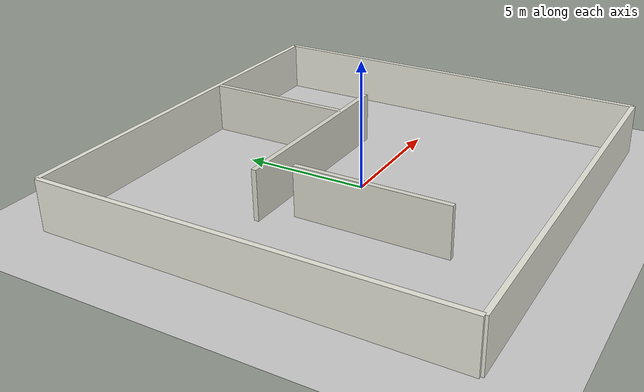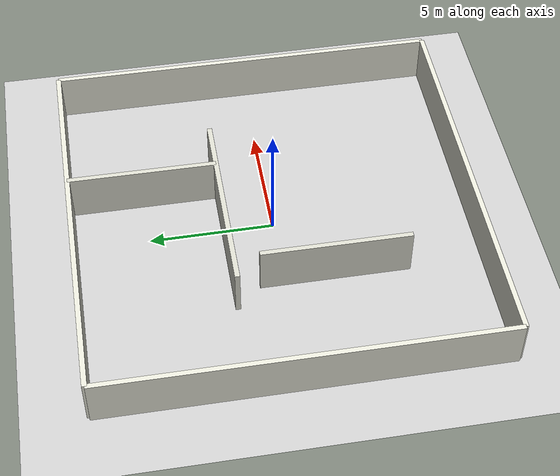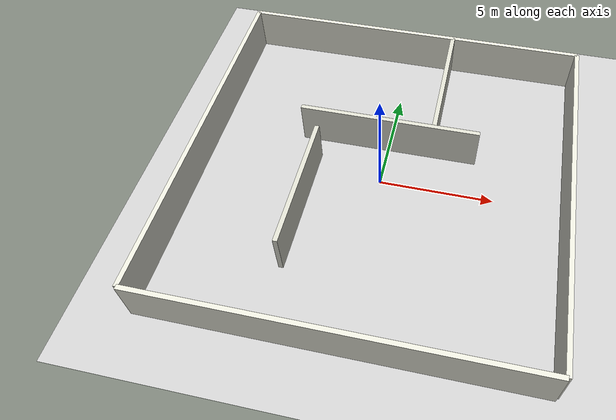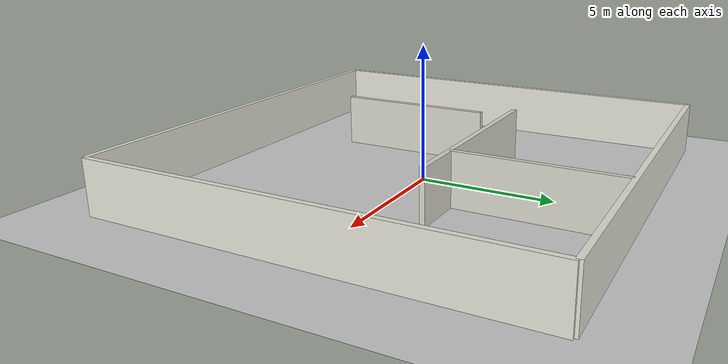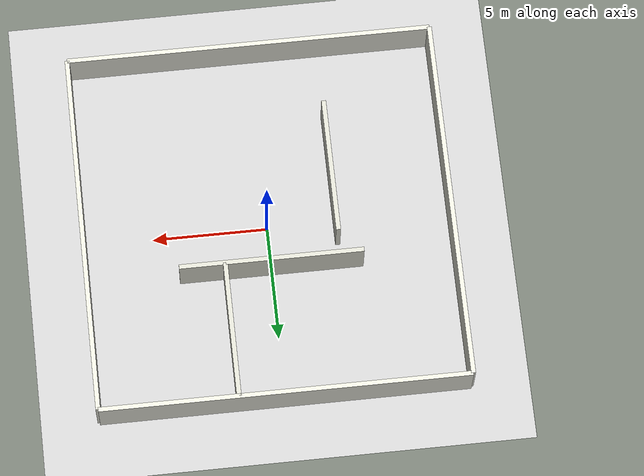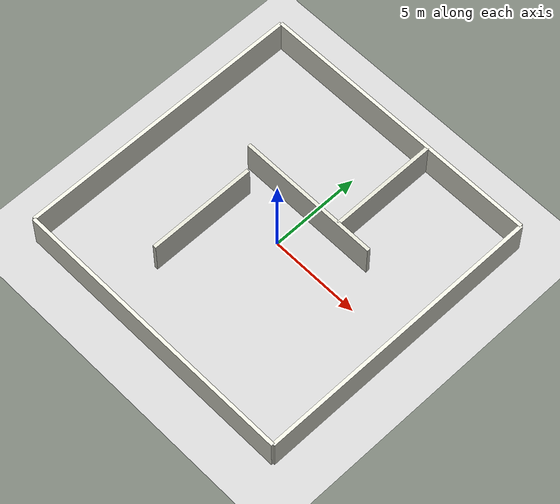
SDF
<?xml version="1.0" ?>
<sdf version="1.8">
  <world name="house">

    <!-- Lumière -->
    <light type="directional" name="sun">
      <cast_shadows>true</cast_shadows>
      <pose>0 0 10 0 0 0</pose>
      <diffuse>0.8 0.8 0.8 1</diffuse>
      <specular>0.2 0.2 0.2 1</specular>
      <direction>-0.5 0.1 -0.9</direction>
    </light>

    <!-- Sol -->
    <model name="ground_plane">
      <static>true</static>
      <link name="link">
        <collision name="collision">
          <geometry><plane><normal>0 0 1</normal></plane></geometry>
        </collision>
        <visual name="visual">
          <geometry><plane><normal>0 0 1</normal><size>50 50</size></plane></geometry>
          <material><ambient>0.8 0.8 0.8 1</ambient></material>
        </visual>
      </link>
    </model>

    <!-- Mur extérieur Nord -->
    <model name="wall_north">
      <static>true</static>
      <pose>0 8 1 0 0 0</pose>
      <link name="link">
        <collision name="collision">
          <geometry><box><size>16 0.2 2</size></box></geometry>
        </collision>
        <visual name="visual">
          <geometry><box><size>16 0.2 2</size></box></geometry>
          <material><ambient>0.9 0.9 0.85 1</ambient></material>
        </visual>
      </link>
    </model>

    <!-- Mur extérieur Sud -->
    <model name="wall_south">
      <static>true</static>
      <pose>0 -8 1 0 0 0</pose>
      <link name="link">
        <collision name="collision">
          <geometry><box><size>16 0.2 2</size></box></geometry>
        </collision>
        <visual name="visual">
          <geometry><box><size>16 0.2 2</size></box></geometry>
          <material><ambient>0.9 0.9 0.85 1</ambient></material>
        </visual>
      </link>
    </model>

    <!-- Mur extérieur Est -->
    <model name="wall_east">
      <static>true</static>
      <pose>8 0 1 0 0 0</pose>
      <link name="link">
        <collision name="collision">
          <geometry><box><size>0.2 16 2</size></box></geometry>
        </collision>
        <visual name="visual">
          <geometry><box><size>0.2 16 2</size></box></geometry>
          <material><ambient>0.9 0.9 0.85 1</ambient></material>
        </visual>
      </link>
    </model>

    <!-- Mur extérieur Ouest -->
    <model name="wall_west">
      <static>true</static>
      <pose>-8 0 1 0 0 0</pose>
      <link name="link">
        <collision name="collision">
          <geometry><box><size>0.2 16 2</size></box></geometry>
        </collision>
        <visual name="visual">
          <geometry><box><size>0.2 16 2</size></box></geometry>
          <material><ambient>0.9 0.9 0.85 1</ambient></material>
        </visual>
      </link>
    </model>

    <!-- Mur intérieur 1 (séparation couloir/salon) -->
    <model name="wall_inner1">
      <static>true</static>
      <pose>0 2 1 0 0 0</pose>
      <link name="link">
        <collision name="collision">
          <geometry><box><size>8 0.2 2</size></box></geometry>
        </collision>
        <visual name="visual">
          <geometry><box><size>8 0.2 2</size></box></geometry>
          <material><ambient>0.85 0.85 0.8 1</ambient></material>
        </visual>
      </link>
    </model>

    <!-- Mur intérieur 2 (séparation chambre/couloir) -->
    <model name="wall_inner2">
      <static>true</static>
      <pose>2 5 1 0 0 1.5707</pose>
      <link name="link">
        <collision name="collision">
          <geometry><box><size>6 0.2 2</size></box></geometry>
        </collision>
        <visual name="visual">
          <geometry><box><size>6 0.2 2</size></box></geometry>
          <material><ambient>0.85 0.85 0.8 1</ambient></material>
        </visual>
      </link>
    </model>

    <!-- Mur intérieur 3 (cuisine) -->
    <model name="wall_inner3">
      <static>true</static>
      <pose>-3 -2 1 0 0 1.5707</pose>
      <link name="link">
        <collision name="collision">
          <geometry><box><size>6 0.2 2</size></box></geometry>
        </collision>
        <visual name="visual">
          <geometry><box><size>6 0.2 2</size></box></geometry>
          <material><ambient>0.85 0.85 0.8 1</ambient></material>
        </visual>
      </link>
    </model>

    <!-- Physique -->
    <physics name="1ms" type="ignored">
      <max_step_size>0.001</max_step_size>
      <real_time_factor>1.0</real_time_factor>
    </physics>

<plugin filename="gz-sim8-physics-system"
            name="gz::sim::systems::Physics"/>
    <plugin filename="gz-sim8-user-commands-system"
            name="gz::sim::systems::UserCommands"/>
    <plugin filename="gz-sim8-scene-broadcaster-system"
            name="gz::sim::systems::SceneBroadcaster"/>

  </world>
</sdf>
